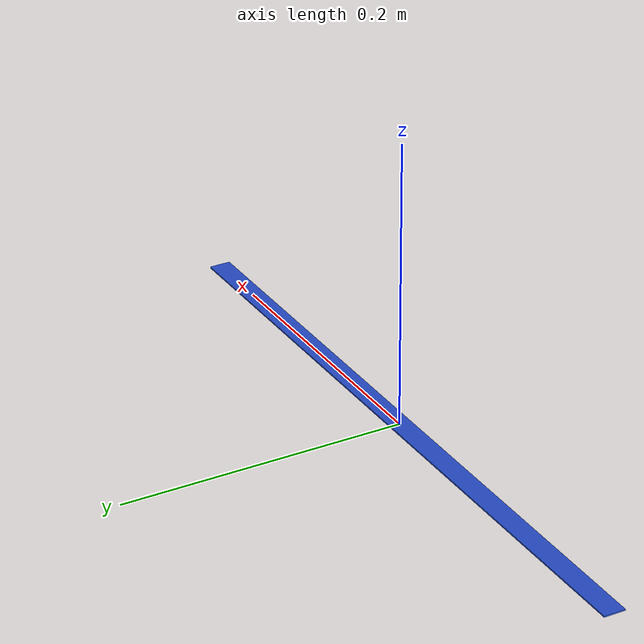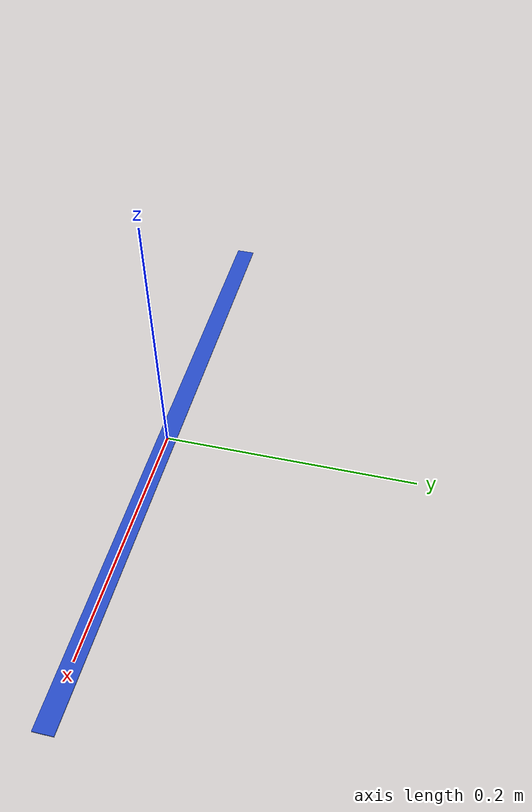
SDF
<?xml version='1.0'?>
<sdf version='1.6'>
  <model name='blue_line2[0.5m]'>
    <link name='link_0'>
      <pose frame=''>0 0 0.0005 0 -0 0</pose>
      <inertial>
        <mass>1</mass>
        <inertia>
          <ixx>0.166667</ixx>
          <ixy>0</ixy>
          <ixz>0</ixz>
          <iyy>0.166667</iyy>
          <iyz>0</iyz>
          <izz>0.166667</izz>
        </inertia>
        <pose frame=''>0 0 0 0 -0 0</pose>
      </inertial>
      <self_collide>0</self_collide>
      <kinematic>0</kinematic>
      <gravity>1</gravity>
      <visual name='visual'>
        <pose frame=''>0 0 0 0 -0 0</pose>
        <geometry>
          <box>
            <size>0.5 0.015 0.001</size>
          </box>
        </geometry>
        <material>
          <lighting>1</lighting>
          <script>
            <uri>file://media/materials/scripts/gazebo.material</uri>
            <name>Gazebo/Blue</name>
          </script>
          <ambient>0 0 1 0</ambient>
          <diffuse>0 0 1 0</diffuse>
          <specular>0.1 0.1 0.1 1</specular>
          <shader type='vertex'>
            <normal_map>__default__</normal_map>
          </shader>
          <emissive>0 0 0 1</emissive>
        </material>
        <cast_shadows>1</cast_shadows>
        <transparency>0</transparency>
      </visual>
    </link>
    <static>1</static>
    <allow_auto_disable>0</allow_auto_disable>
  </model>
</sdf>
